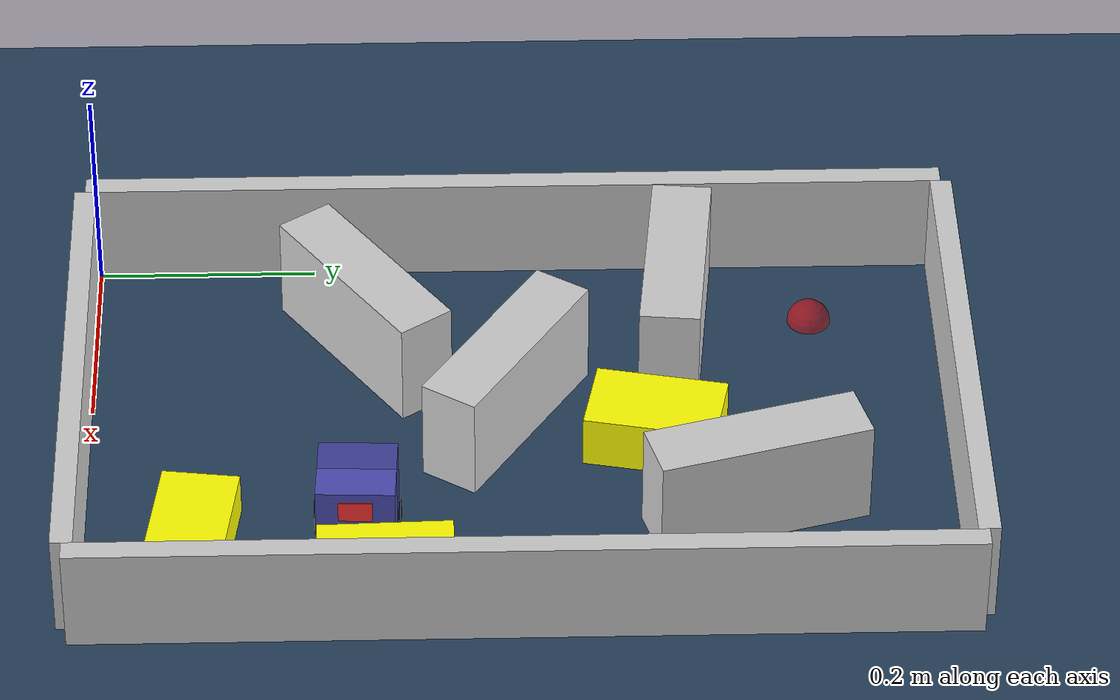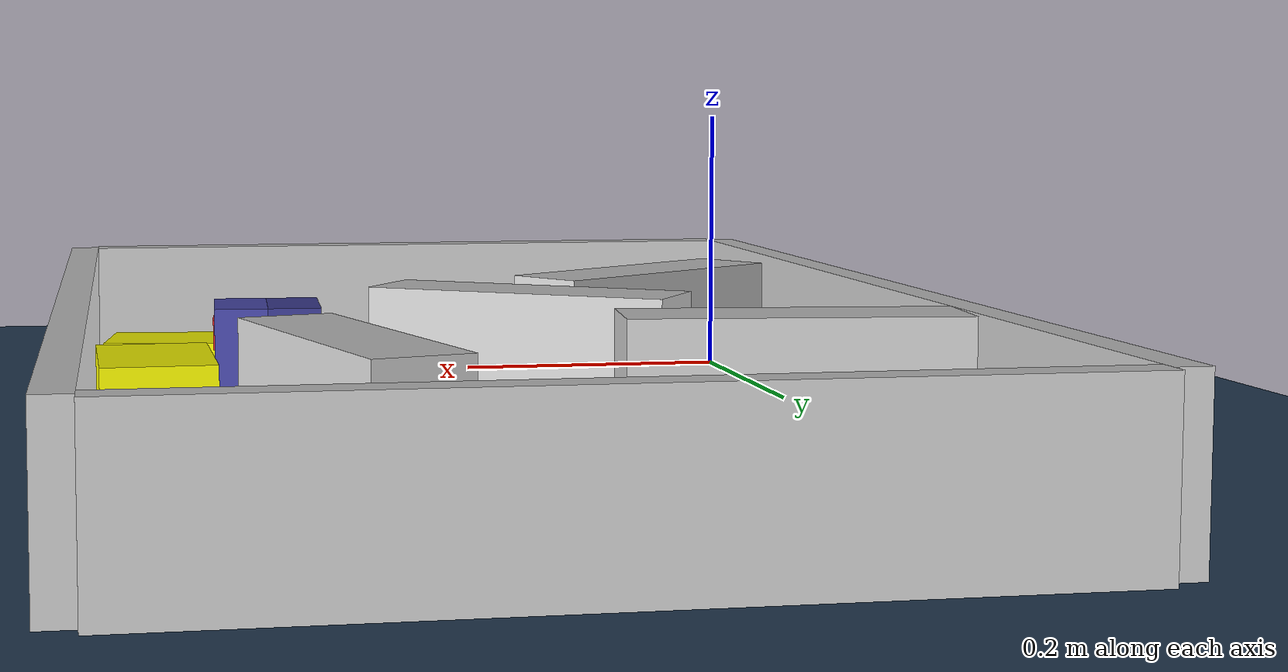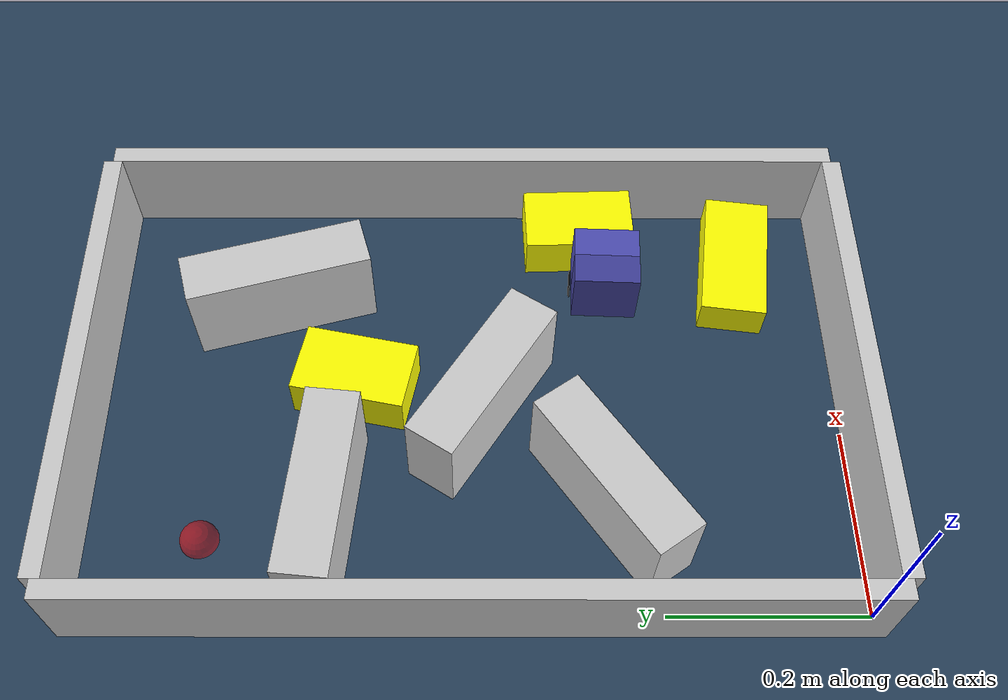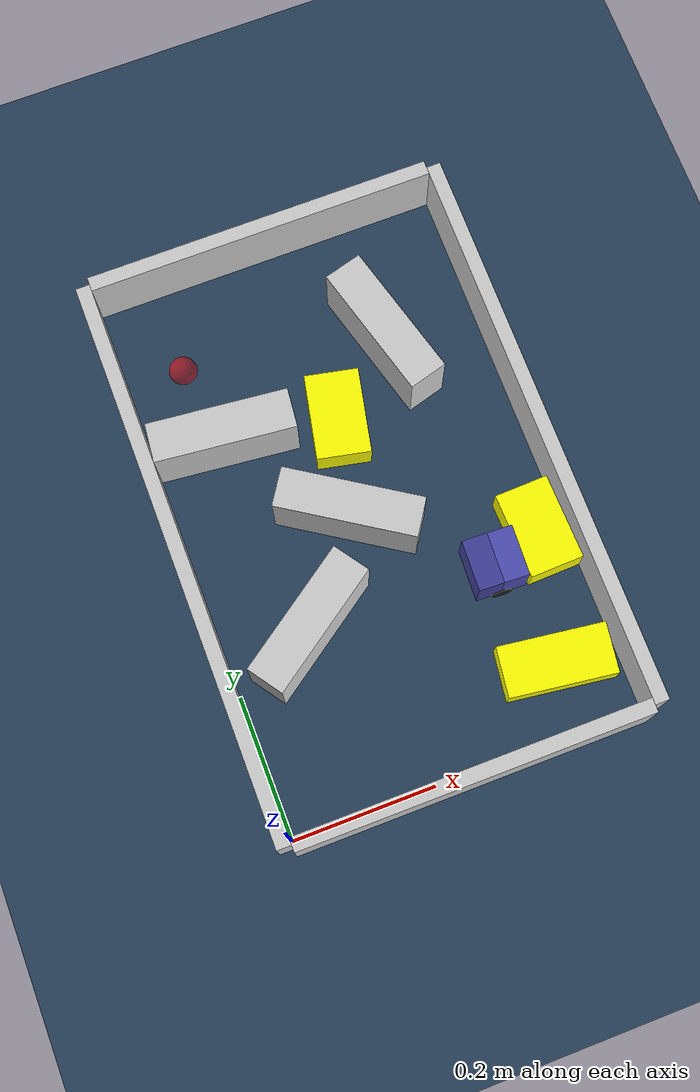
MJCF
<?xml version='1.0' encoding='utf-8'?>
<mujoco model="real_buildable">
  <compiler angle="degree" />
  <option timestep="0.002" integrator="implicitfast" iterations="100" cone="elliptic" />
  <default>
    <geom density="1" />
  </default>
  <asset>
    <texture builtin="gradient" height="3072" rgb1="0.3 0.5 0.7" rgb2="0 0 0" type="skybox" width="512" />
    <texture builtin="checker" height="300" mark="edge" markrgb="0.8 0.8 0.8" name="groundplane" rgb1="0.2 0.3 0.4" rgb2="0.1 0.2 0.3" type="2d" width="300" />
    <material name="groundplane" reflectance="0.2" texrepeat="5 5" texture="groundplane" texuniform="true" />
  </asset>
  <worldbody>
    <light dir="0 0 -1" directional="true" pos="0 0 1.5" />
    <geom name="floor" type="plane" condim="4" friction="0.5 0.005 0.001" material="groundplane" size="0 0 0.05" />
    <body name="walls">
      <geom name="wall_boundary_left" type="box" condim="4" friction="1.0 0.005 0.0001" rgba="0.8 0.8 0.8 1" pos="-0.010000 0.387500 0.050000" euler="0 0 0.000000" size="0.010000 0.397500 0.050000" />
      <geom name="wall_boundary_right" type="box" condim="4" friction="1.0 0.005 0.0001" rgba="0.8 0.8 0.8 1" pos="0.500000 0.387500 0.050000" euler="0 0 0.000000" size="0.010000 0.397500 0.050000" />
      <geom name="wall_boundary_bottom" type="box" condim="4" friction="1.0 0.005 0.0001" rgba="0.8 0.8 0.8 1" pos="0.245000 -0.010000 0.050000" euler="0 0 0.000000" size="0.245000 0.010000 0.050000" />
      <geom name="wall_boundary_top" type="box" condim="4" friction="1.0 0.005 0.0001" rgba="0.8 0.8 0.8 1" pos="0.245000 0.785000 0.050000" euler="0 0 0.000000" size="0.245000 0.010000 0.050000" />
      <geom name="wall_inner_1" type="box" condim="4" friction="1.0 0.005 0.0001" rgba="0.8 0.8 0.8 1" pos="0.221840 0.376264 0.050000" euler="0 0 -33.073979" size="0.097500 0.027500 0.050000" />
      <geom name="wall_inner_2" type="box" condim="4" friction="1.0 0.005 0.0001" rgba="0.8 0.8 0.8 1" pos="0.118093 0.249159 0.050000" euler="0 0 34.896305" size="0.097500 0.027500 0.050000" />
      <geom name="wall_inner_3" type="box" condim="4" friction="1.0 0.005 0.0001" rgba="0.8 0.8 0.8 1" pos="0.100000 0.534000 0.050000" euler="0 0 174.100000" size="0.097500 0.027500 0.050000" />
      <geom name="wall_inner_4" type="box" condim="4" friction="1.0 0.005 0.0001" rgba="0.8 0.8 0.8 1" pos="0.356000 0.595000 0.050000" euler="0 0 105.500000" size="0.097500 0.027500 0.050000" />
    </body>
    <body name="car" pos="0.37570582560724214 0.24201644977157938 0.01" quat="0.99978185949347753 0 0 -0.020886201851088915">
      <freejoint name="car_freejoint" />
      <inertial pos="0 0 0.0375" mass="0.35" diaginertia="0.000266 0.000266 0.000286" />
      <geom name="front_chassis_collision" type="box" pos="0.0175 0 0.0375" size="0.0175 0.035 0.0325" rgba="0.3 0.3 0.7 1" />
      <geom name="rear_chassis_collision" type="box" pos="-0.0175 0 0.0375" size="0.0175 0.035 0.0325" rgba="0.25 0.25 0.6 1" />
      <geom name="front_marker" type="box" pos="0.034 0 0.0505" size="0.002 0.015 0.01" rgba="1 0.2 0.2 1" contype="0" conaffinity="0" />
      <body name="rear_support_body" pos="-0.03 0 0.0025">
        <joint name="rear_caster_joint" type="ball" damping="0.0001" />
        <inertial pos="0 0 0" mass="0.025" diaginertia="0.000001 0.000001 0.000001" />
        <geom name="rear_support" type="sphere" pos="0 0 0" size="0.0025" friction="0 0 0" rgba="0.7 0.1 0.1 1" />
      </body>
      <body name="front_support_body" pos="0.03 0 0.0025">
        <joint name="front_caster_joint" type="ball" damping="0.0001" />
        <inertial pos="0 0 0" mass="0.025" diaginertia="0.000001 0.000001 0.000001" />
        <geom name="front_support" type="sphere" pos="0 0 0" size="0.0025" friction="0 0 0" rgba="0.1 0.7 0.1 1" />
      </body>
      <body name="left_wheel" pos="0 0.0375 0.015">
        <inertial pos="0 0 0" mass="0.05" diaginertia="0.000003 0.000006 0.000003" />
        <joint name="left_wheel_joint" type="hinge" axis="0 1 0" damping="0.01" armature="0.0001" />
        <geom name="left_wheel_collision" type="cylinder" size="0.015 0.0005" euler="90 0 0" rgba="0.1 0.1 0.1 1" />
      </body>
      <body name="right_wheel" pos="0 -0.0375 0.015">
        <inertial pos="0 0 0" mass="0.05" diaginertia="0.000003 0.000006 0.000003" />
        <joint name="right_wheel_joint" type="hinge" axis="0 1 0" damping="0.01" armature="0.0001" />
        <geom name="right_wheel_collision" type="cylinder" size="0.015 0.0005" euler="90 0 0" rgba="0.1 0.1 0.1 1" />
      </body>
    </body>
    <body name="obstacle_0_movable">
      <geom name="obstacle_0_movable" condim="4" pos="0.45077374642796664 0.26729887492963555 0.025000000000000001" friction="1 0.005 0.0001" rgba="1 1 0 1" size="0.037500 0.060000 0.025000" type="box" mass="0.1" quat="0.99988960105765778 0 0 0.014858859201092657" />
      <joint type="free" />
    </body>
    <body name="obstacle_1_movable">
      <geom name="obstacle_1_movable" condim="4" pos="0.25499999999999956 0.50999999999999956 0.025000000000000001" friction="1 0.005 0.0001" rgba="1 1 0 1" size="0.037500 0.060000 0.025000" type="box" mass="0.1" quat="0.99470281711717423 0 0 -0.10279253678724681" />
      <joint type="free" />
    </body>
    <body name="obstacle_2_movable">
      <geom name="obstacle_2_movable" condim="4" pos="0.40676600000000007 0.093671000000000115 0.02" friction="1 0.005 0.0001" rgba="1 1 0 1" size="0.035000 0.075000 0.020000" type="box" mass="0.1" quat="0.7522476537227869 0 0 0.65888046523520649" />
      <joint type="free" />
    </body>
    <site name="goal" type="sphere" pos="0.080000 0.660000 0.0" size="0.02" rgba="1 0 0 0.5" />
  </worldbody>
  <actuator>
    <velocity name="left_wheel_drive" joint="left_wheel_joint" ctrlrange="-25 25" kv="0.75" forcerange="-0.5 0.5" />
    <velocity name="right_wheel_drive" joint="right_wheel_joint" ctrlrange="-25 25" kv="0.75" forcerange="-0.5 0.5" />
  </actuator>
</mujoco>
